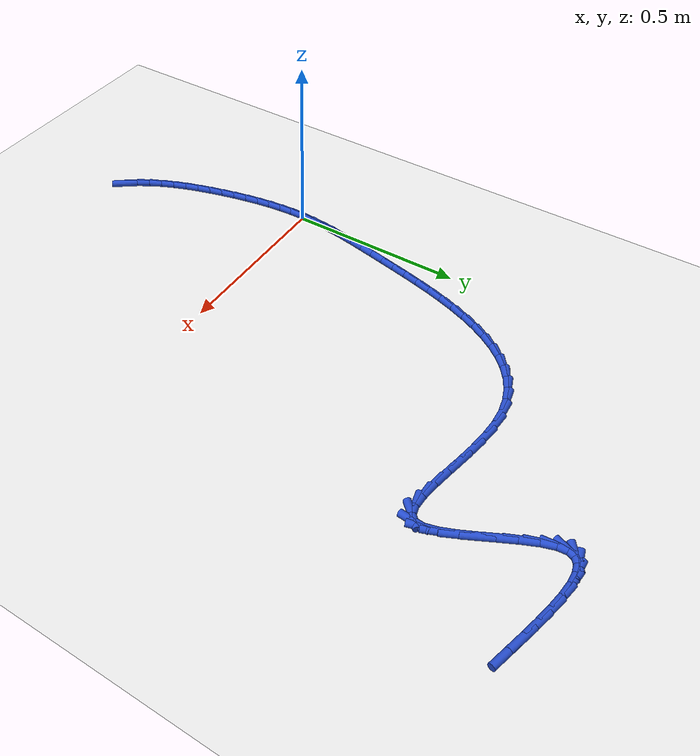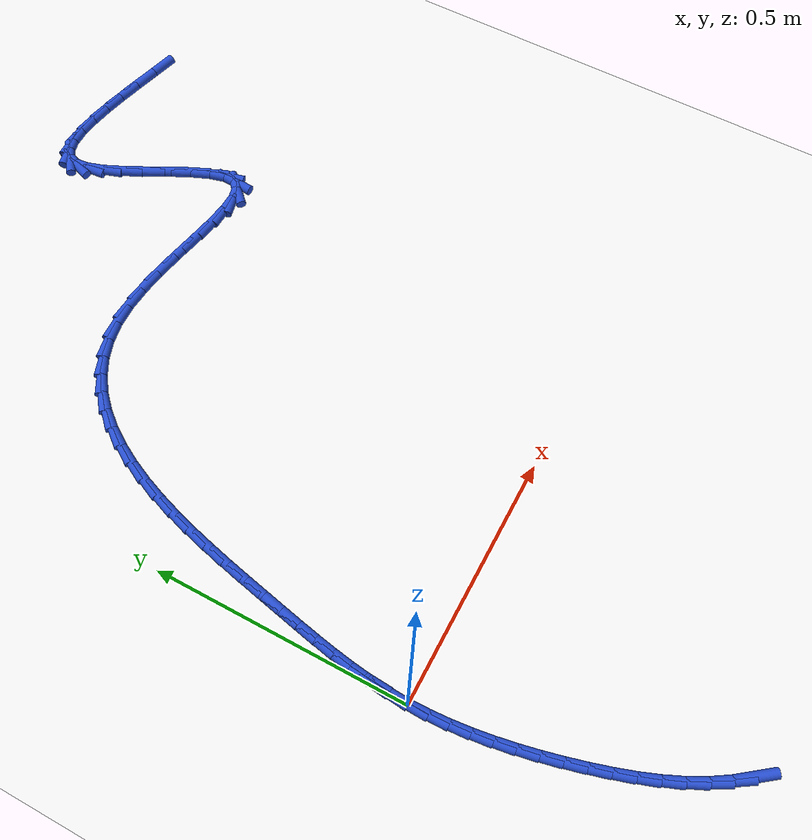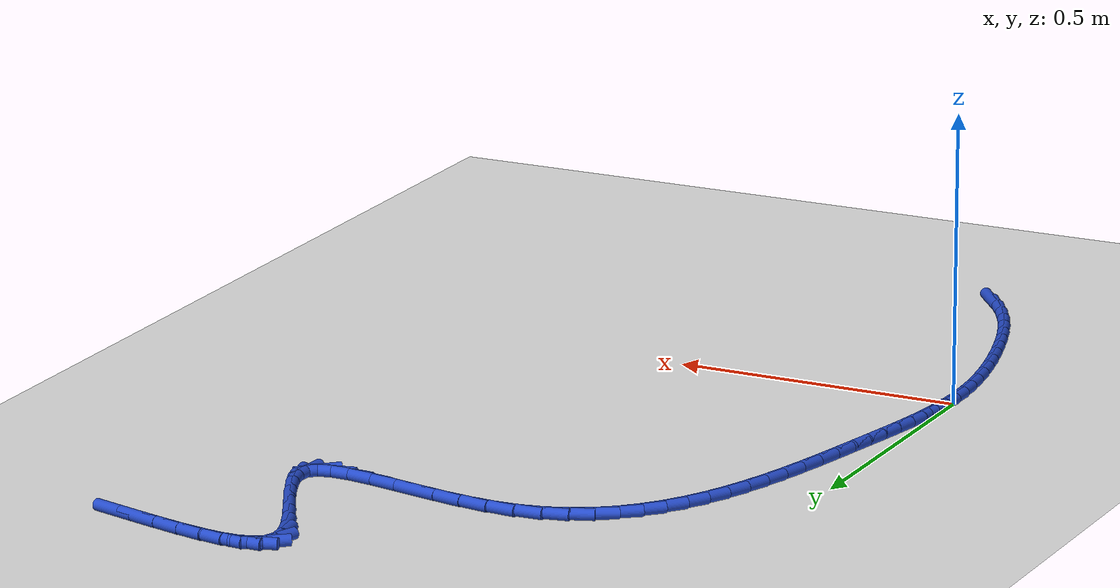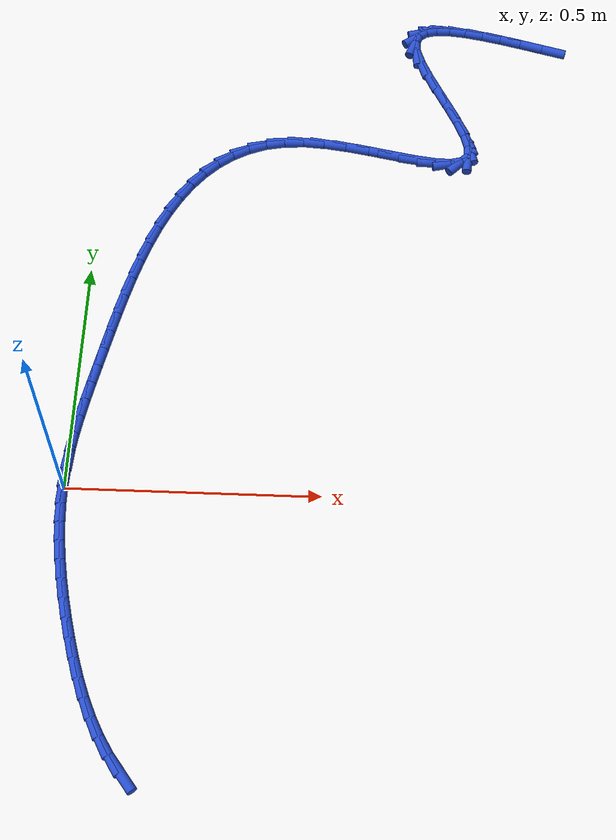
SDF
<sdf version="1.6">
 <world name="default">
  <model name="ground_plane">
   <static>1</static>
   <link name="link">
    <collision name="collision">
     <geometry><plane><normal>0 0 1</normal><size>100 100</size></plane></geometry>
     <surface><friction><ode><mu>100</mu><mu2>50</mu2></ode></friction></surface>
    </collision>
    <visual name="visual">
     <cast_shadows>0</cast_shadows>
     <geometry><plane><normal>0 0 1</normal><size>100 100</size></plane></geometry>
     <material>
      <script><uri>file://media/materials/scripts/gazebo.material</uri><name>Gazebo/WhiteGlow</name></script>
     </material>
    </visual>
   </link>
  </model>
  <model name="line">
   <link name="link_0">
    <pose>-1.0408340855860843e-17 0.0 0.01 0 1.57 1.5338810150821318</pose>
    <collision name="collision">
     <geometry><cylinder><radius>0.01</radius><length>0.08</length></cylinder></geometry>
    </collision>
    <visual name="visual">
     <material>
      <script><name>Gazebo/Blue</name><uri>file://media/materials/scripts/gazebo.material</uri></script>
     </material>
     <geometry><cylinder><radius>0.01</radius><length>0.08</length></cylinder></geometry>
    </visual>
   </link>
   <link name="link_1">
    <pose>0.0013844145351475103 0.037485410470784825 0.01 0 1.57 1.486864023934365</pose>
    <collision name="collision">
     <geometry><cylinder><radius>0.01</radius><length>0.08</length></cylinder></geometry>
    </collision>
    <visual name="visual">
     <material>
      <script><name>Gazebo/Blue</name><uri>file://media/materials/scripts/gazebo.material</uri></script>
     </material>
     <geometry><cylinder><radius>0.01</radius><length>0.08</length></cylinder></geometry>
    </visual>
   </link>
   <link name="link_2">
    <pose>0.004524886502201455 0.07481423269260003 0.01 0 1.57 1.4466615731809624</pose>
    <collision name="collision">
     <geometry><cylinder><radius>0.01</radius><length>0.08</length></cylinder></geometry>
    </collision>
    <visual name="visual">
     <material>
      <script><name>Gazebo/Blue</name><uri>file://media/materials/scripts/gazebo.material</uri></script>
     </material>
     <geometry><cylinder><radius>0.01</radius><length>0.08</length></cylinder></geometry>
    </visual>
   </link>
   <link name="link_3">
    <pose>0.009192861250005192 0.11222497376732163 0.01 0 1.57 1.4139521590009771</pose>
    <collision name="collision">
     <geometry><cylinder><radius>0.01</radius><length>0.08</length></cylinder></geometry>
    </collision>
    <visual name="visual">
     <material>
      <script><name>Gazebo/Blue</name><uri>file://media/materials/scripts/gazebo.material</uri></script>
     </material>
     <geometry><cylinder><radius>0.01</radius><length>0.08</length></cylinder></geometry>
    </visual>
   </link>
   <link name="link_4">
    <pose>0.015159784127402091 0.1499561407968256 0.01 0 1.57 1.389035305526209</pose>
    <collision name="collision">
     <geometry><cylinder><radius>0.01</radius><length>0.08</length></cylinder></geometry>
    </collision>
    <visual name="visual">
     <material>
      <script><name>Gazebo/Blue</name><uri>file://media/materials/scripts/gazebo.material</uri></script>
     </material>
     <geometry><cylinder><radius>0.01</radius><length>0.08</length></cylinder></geometry>
    </visual>
   </link>
   <link name="link_5">
    <pose>0.02219710048323552 0.18824624088298803 0.01 0 1.57 1.3718847321204972</pose>
    <collision name="collision">
     <geometry><cylinder><radius>0.01</radius><length>0.08</length></cylinder></geometry>
    </collision>
    <visual name="visual">
     <material>
      <script><name>Gazebo/Blue</name><uri>file://media/materials/scripts/gazebo.material</uri></script>
     </material>
     <geometry><cylinder><radius>0.01</radius><length>0.08</length></cylinder></geometry>
    </visual>
   </link>
   <link name="link_6">
    <pose>0.030076255666348844 0.22733378112768488 0.01 0 1.57 1.3622171164108423</pose>
    <collision name="collision">
     <geometry><cylinder><radius>0.01</radius><length>0.08</length></cylinder></geometry>
    </collision>
    <visual name="visual">
     <material>
      <script><name>Gazebo/Blue</name><uri>file://media/materials/scripts/gazebo.material</uri></script>
     </material>
     <geometry><cylinder><radius>0.01</radius><length>0.08</length></cylinder></geometry>
    </visual>
   </link>
   <link name="link_7">
    <pose>0.03856869502558545 0.2674572686327923 0.01 0 1.57 1.3594716124734094</pose>
    <collision name="collision">
     <geometry><cylinder><radius>0.01</radius><length>0.08</length></cylinder></geometry>
    </collision>
    <visual name="visual">
     <material>
      <script><name>Gazebo/Blue</name><uri>file://media/materials/scripts/gazebo.material</uri></script>
     </material>
     <geometry><cylinder><radius>0.01</radius><length>0.08</length></cylinder></geometry>
    </visual>
   </link>
   <link name="link_8">
    <pose>0.047448762833857676 0.308850834509866 0.01 0 1.57 1.3580396451433137</pose>
    <collision name="collision">
     <geometry><cylinder><radius>0.01</radius><length>0.08</length></cylinder></geometry>
    </collision>
    <visual name="visual">
     <material>
      <script><name>Gazebo/Blue</name><uri>file://media/materials/scripts/gazebo.material</uri></script>
     </material>
     <geometry><cylinder><radius>0.01</radius><length>0.08</length></cylinder></geometry>
    </visual>
   </link>
   <link name="link_9">
    <pose>0.05666047204780515 0.3514924912209465 0.01 0 1.57 1.3502225064797304</pose>
    <collision name="collision">
     <geometry><cylinder><radius>0.01</radius><length>0.08</length></cylinder></geometry>
    </collision>
    <visual name="visual">
     <material>
      <script><name>Gazebo/Blue</name><uri>file://media/materials/scripts/gazebo.material</uri></script>
     </material>
     <geometry><cylinder><radius>0.01</radius><length>0.08</length></cylinder></geometry>
    </visual>
   </link>
   <link name="link_10">
    <pose>0.0664083976022205 0.3949669271302282 0.01 0 1.57 1.3355788204203622</pose>
    <collision name="collision">
     <geometry><cylinder><radius>0.01</radius><length>0.08</length></cylinder></geometry>
    </collision>
    <visual name="visual">
     <material>
      <script><name>Gazebo/Blue</name><uri>file://media/materials/scripts/gazebo.material</uri></script>
     </material>
     <geometry><cylinder><radius>0.01</radius><length>0.08</length></cylinder></geometry>
    </visual>
   </link>
   <link name="link_11">
    <pose>0.07691924737476162 0.43882542043267536 0.01 0 1.57 1.3139896943194462</pose>
    <collision name="collision">
     <geometry><cylinder><radius>0.01</radius><length>0.08</length></cylinder></geometry>
    </collision>
    <visual name="visual">
     <material>
      <script><name>Gazebo/Blue</name><uri>file://media/materials/scripts/gazebo.material</uri></script>
     </material>
     <geometry><cylinder><radius>0.01</radius><length>0.08</length></cylinder></geometry>
    </visual>
   </link>
   <link name="link_12">
    <pose>0.08841972924308625 0.4826192493232517 0.01 0 1.57 1.2850154068901016</pose>
    <collision name="collision">
     <geometry><cylinder><radius>0.01</radius><length>0.08</length></cylinder></geometry>
    </collision>
    <visual name="visual">
     <material>
      <script><name>Gazebo/Blue</name><uri>file://media/materials/scripts/gazebo.material</uri></script>
     </material>
     <geometry><cylinder><radius>0.01</radius><length>0.08</length></cylinder></geometry>
    </visual>
   </link>
   <link name="link_13">
    <pose>0.10113655108485224 0.5258996919969214 0.01 0 1.57 1.2479029137293958</pose>
    <collision name="collision">
     <geometry><cylinder><radius>0.01</radius><length>0.08</length></cylinder></geometry>
    </collision>
    <visual name="visual">
     <material>
      <script><name>Gazebo/Blue</name><uri>file://media/materials/scripts/gazebo.material</uri></script>
     </material>
     <geometry><cylinder><radius>0.01</radius><length>0.08</length></cylinder></geometry>
    </visual>
   </link>
   <link name="link_14">
    <pose>0.11529642077771743 0.5682180266486485 0.01 0 1.57 1.2015804053674322</pose>
    <collision name="collision">
     <geometry><cylinder><radius>0.01</radius><length>0.08</length></cylinder></geometry>
    </collision>
    <visual name="visual">
     <material>
      <script><name>Gazebo/Blue</name><uri>file://media/materials/scripts/gazebo.material</uri></script>
     </material>
     <geometry><cylinder><radius>0.01</radius><length>0.08</length></cylinder></geometry>
    </visual>
   </link>
   <link name="link_15">
    <pose>0.13112604619933962 0.6091255314733968 0.01 0 1.57 1.1446566900153725</pose>
    <collision name="collision">
     <geometry><cylinder><radius>0.01</radius><length>0.08</length></cylinder></geometry>
    </collision>
    <visual name="visual">
     <material>
      <script><name>Gazebo/Blue</name><uri>file://media/materials/scripts/gazebo.material</uri></script>
     </material>
     <geometry><cylinder><radius>0.01</radius><length>0.08</length></cylinder></geometry>
    </visual>
   </link>
   <link name="link_16">
    <pose>0.1488521352273766 0.6481734846661307 0.01 0 1.57 1.0754558614681373</pose>
    <collision name="collision">
     <geometry><cylinder><radius>0.01</radius><length>0.08</length></cylinder></geometry>
    </collision>
    <visual name="visual">
     <material>
      <script><name>Gazebo/Blue</name><uri>file://media/materials/scripts/gazebo.material</uri></script>
     </material>
     <geometry><cylinder><radius>0.01</radius><length>0.08</length></cylinder></geometry>
    </visual>
   </link>
   <link name="link_17">
    <pose>0.16870139573948623 0.684913164421814 0.01 0 1.57 0.992140794243162</pose>
    <collision name="collision">
     <geometry><cylinder><radius>0.01</radius><length>0.08</length></cylinder></geometry>
    </collision>
    <visual name="visual">
     <material>
      <script><name>Gazebo/Blue</name><uri>file://media/materials/scripts/gazebo.material</uri></script>
     </material>
     <geometry><cylinder><radius>0.01</radius><length>0.08</length></cylinder></geometry>
    </visual>
   </link>
   <link name="link_18">
    <pose>0.19090053561332632 0.7188958489354109 0.01 0 1.57 0.8930087416871463</pose>
    <collision name="collision">
     <geometry><cylinder><radius>0.01</radius><length>0.08</length></cylinder></geometry>
    </collision>
    <visual name="visual">
     <material>
      <script><name>Gazebo/Blue</name><uri>file://media/materials/scripts/gazebo.material</uri></script>
     </material>
     <geometry><cylinder><radius>0.01</radius><length>0.08</length></cylinder></geometry>
    </visual>
   </link>
   <link name="link_19">
    <pose>0.21567626272655474 0.7496728164018852 0.01 0 1.57 0.7770531894006001</pose>
    <collision name="collision">
     <geometry><cylinder><radius>0.01</radius><length>0.08</length></cylinder></geometry>
    </collision>
    <visual name="visual">
     <material>
      <script><name>Gazebo/Blue</name><uri>file://media/materials/scripts/gazebo.material</uri></script>
     </material>
     <geometry><cylinder><radius>0.01</radius><length>0.08</length></cylinder></geometry>
    </visual>
   </link>
   <link name="link_20">
    <pose>0.24325528495682924 0.7767953450162011 0.01 0 1.57 0.6448086993344256</pose>
    <collision name="collision">
     <geometry><cylinder><radius>0.01</radius><length>0.08</length></cylinder></geometry>
    </collision>
    <visual name="visual">
     <material>
      <script><name>Gazebo/Blue</name><uri>file://media/materials/scripts/gazebo.material</uri></script>
     </material>
     <geometry><cylinder><radius>0.01</radius><length>0.08</length></cylinder></geometry>
    </visual>
   </link>
   <link name="link_21">
    <pose>0.27386431018180757 0.7998147129733225 0.01 0 1.57 0.499238976755451</pose>
    <collision name="collision">
     <geometry><cylinder><radius>0.01</radius><length>0.08</length></cylinder></geometry>
    </collision>
    <visual name="visual">
     <material>
      <script><name>Gazebo/Blue</name><uri>file://media/materials/scripts/gazebo.material</uri></script>
     </material>
     <geometry><cylinder><radius>0.01</radius><length>0.08</length></cylinder></geometry>
    </visual>
   </link>
   <link name="link_22">
    <pose>0.30773004627914785 0.8182821984682137 0.01 0 1.57 0.3460576391231455</pose>
    <collision name="collision">
     <geometry><cylinder><radius>0.01</radius><length>0.08</length></cylinder></geometry>
    </collision>
    <visual name="visual">
     <material>
      <script><name>Gazebo/Blue</name><uri>file://media/materials/scripts/gazebo.material</uri></script>
     </material>
     <geometry><cylinder><radius>0.01</radius><length>0.08</length></cylinder></geometry>
    </visual>
   </link>
   <link name="link_23">
    <pose>0.3450792011265077 0.8317490796958386 0.01 0 1.57 0.1928412448394072</pose>
    <collision name="collision">
     <geometry><cylinder><radius>0.01</radius><length>0.08</length></cylinder></geometry>
    </collision>
    <visual name="visual">
     <material>
      <script><name>Gazebo/Blue</name><uri>file://media/materials/scripts/gazebo.material</uri></script>
     </material>
     <geometry><cylinder><radius>0.01</radius><length>0.08</length></cylinder></geometry>
    </visual>
   </link>
   <link name="link_24">
    <pose>0.3861384826015446 0.8397666348511607 0.01 0 1.57 0.04743158602679558</pose>
    <collision name="collision">
     <geometry><cylinder><radius>0.01</radius><length>0.08</length></cylinder></geometry>
    </collision>
    <visual name="visual">
     <material>
      <script><name>Gazebo/Blue</name><uri>file://media/materials/scripts/gazebo.material</uri></script>
     </material>
     <geometry><cylinder><radius>0.01</radius><length>0.08</length></cylinder></geometry>
    </visual>
   </link>
   <link name="link_25">
    <pose>0.43112037120265406 0.8419017986088949 0.01 0 1.57 -0.06922000271354344</pose>
    <collision name="collision">
     <geometry><cylinder><radius>0.01</radius><length>0.08</length></cylinder></geometry>
    </collision>
    <visual name="visual">
     <material>
      <script><name>Gazebo/Blue</name><uri>file://media/materials/scripts/gazebo.material</uri></script>
     </material>
     <geometry><cylinder><radius>0.01</radius><length>0.08</length></cylinder></geometry>
    </visual>
   </link>
   <link name="link_26">
    <pose>0.47948575894070256 0.8385485890944435 0.01 0 1.57 -0.14324961648170986</pose>
    <collision name="collision">
     <geometry><cylinder><radius>0.01</radius><length>0.08</length></cylinder></geometry>
    </collision>
    <visual name="visual">
     <material>
      <script><name>Gazebo/Blue</name><uri>file://media/materials/scripts/gazebo.material</uri></script>
     </material>
     <geometry><cylinder><radius>0.01</radius><length>0.08</length></cylinder></geometry>
    </visual>
   </link>
   <link name="link_27">
    <pose>0.5295857494767011 0.8313222879213649 0.01 0 1.57 -0.18520853323677097</pose>
    <collision name="collision">
     <geometry><cylinder><radius>0.01</radius><length>0.08</length></cylinder></geometry>
    </collision>
    <visual name="visual">
     <material>
      <script><name>Gazebo/Blue</name><uri>file://media/materials/scripts/gazebo.material</uri></script>
     </material>
     <geometry><cylinder><radius>0.01</radius><length>0.08</length></cylinder></geometry>
    </visual>
   </link>
   <link name="link_28">
    <pose>0.5796821503316062 0.8219364423909886 0.01 0 1.57 -0.20059339653348188</pose>
    <collision name="collision">
     <geometry><cylinder><radius>0.01</radius><length>0.08</length></cylinder></geometry>
    </collision>
    <visual name="visual">
     <material>
      <script><name>Gazebo/Blue</name><uri>file://media/materials/scripts/gazebo.material</uri></script>
     </material>
     <geometry><cylinder><radius>0.01</radius><length>0.08</length></cylinder></geometry>
    </visual>
   </link>
   <link name="link_29">
    <pose>0.6280367690263744 0.8121045998046457 0.01 0 1.57 -0.18858148281199633</pose>
    <collision name="collision">
     <geometry><cylinder><radius>0.01</radius><length>0.08</length></cylinder></geometry>
    </collision>
    <visual name="visual">
     <material>
      <script><name>Gazebo/Blue</name><uri>file://media/materials/scripts/gazebo.material</uri></script>
     </material>
     <geometry><cylinder><radius>0.01</radius><length>0.08</length></cylinder></geometry>
    </visual>
   </link>
   <link name="link_30">
    <pose>0.6729114130819626 0.8035403074636661 0.01 0 1.57 -0.13986966720312527</pose>
    <collision name="collision">
     <geometry><cylinder><radius>0.01</radius><length>0.08</length></cylinder></geometry>
    </collision>
    <visual name="visual">
     <material>
      <script><name>Gazebo/Blue</name><uri>file://media/materials/scripts/gazebo.material</uri></script>
     </material>
     <geometry><cylinder><radius>0.01</radius><length>0.08</length></cylinder></geometry>
    </visual>
   </link>
   <link name="link_31">
    <pose>0.7125678900193272 0.7979571126693802 0.01 0 1.57 -0.02716599899316748</pose>
    <collision name="collision">
     <geometry><cylinder><radius>0.01</radius><length>0.08</length></cylinder></geometry>
    </collision>
    <visual name="visual">
     <material>
      <script><name>Gazebo/Blue</name><uri>file://media/materials/scripts/gazebo.material</uri></script>
     </material>
     <geometry><cylinder><radius>0.01</radius><length>0.08</length></cylinder></geometry>
    </visual>
   </link>
   <link name="link_32">
    <pose>0.7452680073594252 0.7970685627231182 0.01 0 1.57 0.2260035886981403</pose>
    <collision name="collision">
     <geometry><cylinder><radius>0.01</radius><length>0.08</length></cylinder></geometry>
    </collision>
    <visual name="visual">
     <material>
      <script><name>Gazebo/Blue</name><uri>file://media/materials/scripts/gazebo.material</uri></script>
     </material>
     <geometry><cylinder><radius>0.01</radius><length>0.08</length></cylinder></geometry>
    </visual>
   </link>
   <link name="link_33">
    <pose>0.7692735726232129 0.8025882049262107 0.01 0 1.57 0.7879174656125562</pose>
    <collision name="collision">
     <geometry><cylinder><radius>0.01</radius><length>0.08</length></cylinder></geometry>
    </collision>
    <visual name="visual">
     <material>
      <script><name>Gazebo/Blue</name><uri>file://media/materials/scripts/gazebo.material</uri></script>
     </material>
     <geometry><cylinder><radius>0.01</radius><length>0.08</length></cylinder></geometry>
    </visual>
   </link>
   <link name="link_34">
    <pose>0.7828463933316472 0.816229586579988 0.01 0 1.57 1.4905816882147926</pose>
    <collision name="collision">
     <geometry><cylinder><radius>0.01</radius><length>0.08</length></cylinder></geometry>
    </collision>
    <visual name="visual">
     <material>
      <script><name>Gazebo/Blue</name><uri>file://media/materials/scripts/gazebo.material</uri></script>
     </material>
     <geometry><cylinder><radius>0.01</radius><length>0.08</length></cylinder></geometry>
    </visual>
   </link>
   <link name="link_35">
    <pose>0.7847014870375278 0.8393065864038246 0.01 0 1.57 -1.312764777888609</pose>
    <collision name="collision">
     <geometry><cylinder><radius>0.01</radius><length>0.08</length></cylinder></geometry>
    </collision>
    <visual name="visual">
     <material>
      <script><name>Gazebo/Blue</name><uri>file://media/materials/scripts/gazebo.material</uri></script>
     </material>
     <geometry><cylinder><radius>0.01</radius><length>0.08</length></cylinder></geometry>
    </visual>
   </link>
   <link name="link_36">
    <pose>0.7764476613049041 0.8705811604564926 0.01 0 1.57 -1.1736444867047655</pose>
    <collision name="collision">
     <geometry><cylinder><radius>0.01</radius><length>0.08</length></cylinder></geometry>
    </collision>
    <visual name="visual">
     <material>
      <script><name>Gazebo/Blue</name><uri>file://media/materials/scripts/gazebo.material</uri></script>
     </material>
     <geometry><cylinder><radius>0.01</radius><length>0.08</length></cylinder></geometry>
    </visual>
   </link>
   <link name="link_37">
    <pose>0.7608316582090342 0.9078117639020391 0.01 0 1.57 -1.111900751533667</pose>
    <collision name="collision">
     <geometry><cylinder><radius>0.01</radius><length>0.08</length></cylinder></geometry>
    </collision>
    <visual name="visual">
     <material>
      <script><name>Gazebo/Blue</name><uri>file://media/materials/scripts/gazebo.material</uri></script>
     </material>
     <geometry><cylinder><radius>0.01</radius><length>0.08</length></cylinder></geometry>
    </visual>
   </link>
   <link name="link_38">
    <pose>0.7406029404583624 0.9487544526822275 0.01 0 1.57 -1.0905657357608847</pose>
    <collision name="collision">
     <geometry><cylinder><radius>0.01</radius><length>0.08</length></cylinder></geometry>
    </collision>
    <visual name="visual">
     <material>
      <script><name>Gazebo/Blue</name><uri>file://media/materials/scripts/gazebo.material</uri></script>
     </material>
     <geometry><cylinder><radius>0.01</radius><length>0.08</length></cylinder></geometry>
    </visual>
   </link>
   <link name="link_39">
    <pose>0.7185109707613317 0.9911652827388207 0.01 0 1.57 -1.0997166024331724</pose>
    <collision name="collision">
     <geometry><cylinder><radius>0.01</radius><length>0.08</length></cylinder></geometry>
    </collision>
    <visual name="visual">
     <material>
      <script><name>Gazebo/Blue</name><uri>file://media/materials/scripts/gazebo.material</uri></script>
     </material>
     <geometry><cylinder><radius>0.01</radius><length>0.08</length></cylinder></geometry>
    </visual>
   </link>
   <link name="link_40">
    <pose>0.6973052118263865 1.0328003100135836 0.01 0 1.57 -1.1437893352278174</pose>
    <collision name="collision">
     <geometry><cylinder><radius>0.01</radius><length>0.08</length></cylinder></geometry>
    </collision>
    <visual name="visual">
     <material>
      <script><name>Gazebo/Blue</name><uri>file://media/materials/scripts/gazebo.material</uri></script>
     </material>
     <geometry><cylinder><radius>0.01</radius><length>0.08</length></cylinder></geometry>
    </visual>
   </link>
   <link name="link_41">
    <pose>0.6797351263619702 1.0714155904482792 0.01 0 1.57 -1.2472185644766596</pose>
    <collision name="collision">
     <geometry><cylinder><radius>0.01</radius><length>0.08</length></cylinder></geometry>
    </collision>
    <visual name="visual">
     <material>
      <script><name>Gazebo/Blue</name><uri>file://media/materials/scripts/gazebo.material</uri></script>
     </material>
     <geometry><cylinder><radius>0.01</radius><length>0.08</length></cylinder></geometry>
    </visual>
   </link>
   <link name="link_42">
    <pose>0.6685501770765268 1.104767179984671 0.01 0 1.57 -1.4837549612714973</pose>
    <collision name="collision">
     <geometry><cylinder><radius>0.01</radius><length>0.08</length></cylinder></geometry>
    </collision>
    <visual name="visual">
     <material>
      <script><name>Gazebo/Blue</name><uri>file://media/materials/scripts/gazebo.material</uri></script>
     </material>
     <geometry><cylinder><radius>0.01</radius><length>0.08</length></cylinder></geometry>
    </visual>
   </link>
   <link name="link_43">
    <pose>0.6662787332912858 1.1307973849179023 0.01 0 1.57 1.2076303518280236</pose>
    <collision name="collision">
     <geometry><cylinder><radius>0.01</radius><length>0.08</length></cylinder></geometry>
    </collision>
    <visual name="visual">
     <material>
      <script><name>Gazebo/Blue</name><uri>file://media/materials/scripts/gazebo.material</uri></script>
     </material>
     <geometry><cylinder><radius>0.01</radius><length>0.08</length></cylinder></geometry>
    </visual>
   </link>
   <link name="link_44">
    <pose>0.673295864148692 1.1492624641189149 0.01 0 1.57 0.6467468062849852</pose>
    <collision name="collision">
     <geometry><cylinder><radius>0.01</radius><length>0.08</length></cylinder></geometry>
    </collision>
    <visual name="visual">
     <material>
      <script><name>Gazebo/Blue</name><uri>file://media/materials/scripts/gazebo.material</uri></script>
     </material>
     <geometry><cylinder><radius>0.01</radius><length>0.08</length></cylinder></geometry>
    </visual>
   </link>
   <link name="link_45">
    <pose>0.6887627527752381 1.1609412610880783 0.01 0 1.57 0.24158050422135313</pose>
    <collision name="collision">
     <geometry><cylinder><radius>0.01</radius><length>0.08</length></cylinder></geometry>
    </collision>
    <visual name="visual">
     <material>
      <script><name>Gazebo/Blue</name><uri>file://media/materials/scripts/gazebo.material</uri></script>
     </material>
     <geometry><cylinder><radius>0.01</radius><length>0.08</length></cylinder></geometry>
    </visual>
   </link>
   <link name="link_46">
    <pose>0.7118269470503021 1.1666241057371163 0.01 0 1.57 0.016007940934466457</pose>
    <collision name="collision">
     <geometry><cylinder><radius>0.01</radius><length>0.08</length></cylinder></geometry>
    </collision>
    <visual name="visual">
     <material>
      <script><name>Gazebo/Blue</name><uri>file://media/materials/scripts/gazebo.material</uri></script>
     </material>
     <geometry><cylinder><radius>0.01</radius><length>0.08</length></cylinder></geometry>
    </visual>
   </link>
   <link name="link_47">
    <pose>0.7416359948532618 1.167101327977752 0.01 0 1.57 -0.10986147646847871</pose>
    <collision name="collision">
     <geometry><cylinder><radius>0.01</radius><length>0.08</length></cylinder></geometry>
    </collision>
    <visual name="visual">
     <material>
      <script><name>Gazebo/Blue</name><uri>file://media/materials/scripts/gazebo.material</uri></script>
     </material>
     <geometry><cylinder><radius>0.01</radius><length>0.08</length></cylinder></geometry>
    </visual>
   </link>
   <link name="link_48">
    <pose>0.7773374440634957 1.163163257721709 0.01 0 1.57 -0.18354576177938658</pose>
    <collision name="collision">
     <geometry><cylinder><radius>0.01</radius><length>0.08</length></cylinder></geometry>
    </collision>
    <visual name="visual">
     <material>
      <script><name>Gazebo/Blue</name><uri>file://media/materials/scripts/gazebo.material</uri></script>
     </material>
     <geometry><cylinder><radius>0.01</radius><length>0.08</length></cylinder></geometry>
    </visual>
   </link>
   <link name="link_49">
    <pose>0.8180788425603821 1.155600224880712 0.01 0 1.57 -0.22742128290877697</pose>
    <collision name="collision">
     <geometry><cylinder><radius>0.01</radius><length>0.08</length></cylinder></geometry>
    </collision>
    <visual name="visual">
     <material>
      <script><name>Gazebo/Blue</name><uri>file://media/materials/scripts/gazebo.material</uri></script>
     </material>
     <geometry><cylinder><radius>0.01</radius><length>0.08</length></cylinder></geometry>
    </visual>
   </link>
   <link name="link_50">
    <pose>0.8630077382232985 1.145202559366484 0.01 0 1.57 -0.2522970190864793</pose>
    <collision name="collision">
     <geometry><cylinder><radius>0.01</radius><length>0.08</length></cylinder></geometry>
    </collision>
    <visual name="visual">
     <material>
      <script><name>Gazebo/Blue</name><uri>file://media/materials/scripts/gazebo.material</uri></script>
     </material>
     <geometry><cylinder><radius>0.01</radius><length>0.08</length></cylinder></geometry>
    </visual>
   </link>
   <link name="link_51">
    <pose>0.9112716789316234 1.1327605910907488 0.01 0 1.57 -0.26360855567686203</pose>
    <collision name="collision">
     <geometry><cylinder><radius>0.01</radius><length>0.08</length></cylinder></geometry>
    </collision>
    <visual name="visual">
     <material>
      <script><name>Gazebo/Blue</name><uri>file://media/materials/scripts/gazebo.material</uri></script>
     </material>
     <geometry><cylinder><radius>0.01</radius><length>0.08</length></cylinder></geometry>
    </visual>
   </link>
   <link name="link_52">
    <pose>0.962018212564735 1.1190646499652301 0.01 0 1.57 -0.26403002023799016</pose>
    <collision name="collision">
     <geometry><cylinder><radius>0.01</radius><length>0.08</length></cylinder></geometry>
    </collision>
    <visual name="visual">
     <material>
      <script><name>Gazebo/Blue</name><uri>file://media/materials/scripts/gazebo.material</uri></script>
     </material>
     <geometry><cylinder><radius>0.01</radius><length>0.08</length></cylinder></geometry>
    </visual>
   </link>
   <link name="link_195">
    <pose>0.16548214282638812 -0.5538801457730083 0.01 0 1.57 -0.9149070073317634</pose>
    <collision name="collision">
     <geometry><cylinder><radius>0.01</radius><length>0.08</length></cylinder></geometry>
    </collision>
    <visual name="visual">
     <material>
      <script><name>Gazebo/Blue</name><uri>file://media/materials/scripts/gazebo.material</uri></script>
     </material>
     <geometry><cylinder><radius>0.01</radius><length>0.08</length></cylinder></geometry>
    </visual>
   </link>
   <link name="link_196">
    <pose>0.14204560661946827 -0.5234248568802925 0.01 0 1.57 -1.003091259931415</pose>
    <collision name="collision">
     <geometry><cylinder><radius>0.01</radius><length>0.08</length></cylinder></geometry>
    </collision>
    <visual name="visual">
     <material>
      <script><name>Gazebo/Blue</name><uri>file://media/materials/scripts/gazebo.material</uri></script>
     </material>
     <geometry><cylinder><radius>0.01</radius><length>0.08</length></cylinder></geometry>
    </visual>
   </link>
   <link name="link_197">
    <pose>0.12129904115972354 -0.4908932432010389 0.01 0 1.57 -1.079869448055332</pose>
    <collision name="collision">
     <geometry><cylinder><radius>0.01</radius><length>0.08</length></cylinder></geometry>
    </collision>
    <visual name="visual">
     <material>
      <script><name>Gazebo/Blue</name><uri>file://media/materials/scripts/gazebo.material</uri></script>
     </material>
     <geometry><cylinder><radius>0.01</radius><length>0.08</length></cylinder></geometry>
    </visual>
   </link>
   <link name="link_198">
    <pose>0.10296104975912516 -0.45658964987177403 0.01 0 1.57 -1.1453008507867803</pose>
    <collision name="collision">
     <geometry><cylinder><radius>0.01</radius><length>0.08</length></cylinder></geometry>
    </collision>
    <visual name="visual">
     <material>
      <script><name>Gazebo/Blue</name><uri>file://media/materials/scripts/gazebo.material</uri></script>
     </material>
     <geometry><cylinder><radius>0.01</radius><length>0.08</length></cylinder></geometry>
    </visual>
   </link>
   <link name="link_199">
    <pose>0.08675023572964487 -0.4208184220290253 0.01 0 1.57 -1.1998671746621121</pose>
    <collision name="collision">
     <geometry><cylinder><radius>0.01</radius><length>0.08</length></cylinder></geometry>
    </collision>
    <visual name="visual">
     <material>
      <script><name>Gazebo/Blue</name><uri>file://media/materials/scripts/gazebo.material</uri></script>
     </material>
     <geometry><cylinder><radius>0.01</radius><length>0.08</length></cylinder></geometry>
    </visual>
   </link>
   <link name="link_200">
    <pose>0.07238520238325444 -0.3838839048093199 0.01 0 1.57 -1.244223479703674</pose>
    <collision name="collision">
     <geometry><cylinder><radius>0.01</radius><length>0.08</length></cylinder></geometry>
    </collision>
    <visual name="visual">
     <material>
      <script><name>Gazebo/Blue</name><uri>file://media/materials/scripts/gazebo.material</uri></script>
     </material>
     <geometry><cylinder><radius>0.01</radius><length>0.08</length></cylinder></geometry>
    </visual>
   </link>
   <link name="link_201">
    <pose>0.0595845530319256 -0.34609044334918504 0.01 0 1.57 -1.279022718670905</pose>
    <collision name="collision">
     <geometry><cylinder><radius>0.01</radius><length>0.08</length></cylinder></geometry>
    </collision>
    <visual name="visual">
     <material>
      <script><name>Gazebo/Blue</name><uri>file://media/materials/scripts/gazebo.material</uri></script>
     </material>
     <geometry><cylinder><radius>0.01</radius><length>0.08</length></cylinder></geometry>
    </visual>
   </link>
   <link name="link_202">
    <pose>0.04806689098762984 -0.30774238278514693 0.01 0 1.57 -1.3053726801272243</pose>
    <collision name="collision">
     <geometry><cylinder><radius>0.01</radius><length>0.08</length></cylinder></geometry>
    </collision>
    <visual name="visual">
     <material>
      <script><name>Gazebo/Blue</name><uri>file://media/materials/scripts/gazebo.material</uri></script>
     </material>
     <geometry><cylinder><radius>0.01</radius><length>0.08</length></cylinder></geometry>
    </visual>
   </link>
   <link name="link_203">
    <pose>0.0375713374873838 -0.2691327161191194 0.01 0 1.57 -1.330325500494913</pose>
    <collision name="collision">
     <geometry><cylinder><radius>0.01</radius><length>0.08</length></cylinder></geometry>
    </collision>
    <visual name="visual">
     <material>
      <script><name>Gazebo/Blue</name><uri>file://media/materials/scripts/gazebo.material</uri></script>
     </material>
     <geometry><cylinder><radius>0.01</radius><length>0.08</length></cylinder></geometry>
    </visual>
   </link>
   <link name="link_204">
    <pose>0.028078562809816084 -0.23042079236948762 0.01 0 1.57 -1.3584641786401253</pose>
    <collision name="collision">
     <geometry><cylinder><radius>0.01</radius><length>0.08</length></cylinder></geometry>
    </collision>
    <visual name="visual">
     <material>
      <script><name>Gazebo/Blue</name><uri>file://media/materials/scripts/gazebo.material</uri></script>
     </material>
     <geometry><cylinder><radius>0.01</radius><length>0.08</length></cylinder></geometry>
    </visual>
   </link>
   <link name="link_205">
    <pose>0.0197265253699004 -0.1916789363505176 0.01 0 1.57 -1.3900895905732087</pose>
    <collision name="collision">
     <geometry><cylinder><radius>0.01</radius><length>0.08</length></cylinder></geometry>
    </collision>
    <visual name="visual">
     <material>
      <script><name>Gazebo/Blue</name><uri>file://media/materials/scripts/gazebo.material</uri></script>
     </material>
     <geometry><cylinder><radius>0.01</radius><length>0.08</length></cylinder></geometry>
    </visual>
   </link>
   <link name="link_206">
    <pose>0.012655870975205255 -0.15297798599890677 0.01 0 1.57 -1.4254501744800194</pose>
    <collision name="collision">
     <geometry><cylinder><radius>0.01</radius><length>0.08</length></cylinder></geometry>
    </collision>
    <visual name="visual">
     <material>
      <script><name>Gazebo/Blue</name><uri>file://media/materials/scripts/gazebo.material</uri></script>
     </material>
     <geometry><cylinder><radius>0.01</radius><length>0.08</length></cylinder></geometry>
    </visual>
   </link>
   <link name="link_207">
    <pose>0.007007245433299132 -0.11438877925135223 0.01 0 1.57 -1.4648083723929024</pose>
    <collision name="collision">
     <geometry><cylinder><radius>0.01</radius><length>0.08</length></cylinder></geometry>
    </collision>
    <visual name="visual">
     <material>
      <script><name>Gazebo/Blue</name><uri>file://media/materials/scripts/gazebo.material</uri></script>
     </material>
     <geometry><cylinder><radius>0.01</radius><length>0.08</length></cylinder></geometry>
    </visual>
   </link>
   <link name="link_208">
    <pose>0.0029212945517505516 -0.07598215404455141 0.01 0 1.57 -1.5084282958277124</pose>
    <collision name="collision">
     <geometry><cylinder><radius>0.01</radius><length>0.08</length></cylinder></geometry>
    </collision>
    <visual name="visual">
     <material>
      <script><name>Gazebo/Blue</name><uri>file://media/materials/scripts/gazebo.material</uri></script>
     </material>
     <geometry><cylinder><radius>0.01</radius><length>0.08</length></cylinder></geometry>
    </visual>
   </link>
   <link name="link_209">
    <pose>0.0005386641381279703 -0.03782894831520067 0.01 0 1.57 -1.5565578200537105</pose>
    <collision name="collision">
     <geometry><cylinder><radius>0.01</radius><length>0.08</length></cylinder></geometry>
    </collision>
    <visual name="visual">
     <material>
      <script><name>Gazebo/Blue</name><uri>file://media/materials/scripts/gazebo.material</uri></script>
     </material>
     <geometry><cylinder><radius>0.01</radius><length>0.08</length></cylinder></geometry>
    </visual>
   </link>
   <link name="link_210">
    <pose>-6.938893903907228e-18 -9.020562075079397e-17 0.01 0 1.57 1.5321887739206883</pose>
    <collision name="collision">
     <geometry><cylinder><radius>0.01</radius><length>0.08</length></cylinder></geometry>
    </collision>
    <visual name="visual">
     <material>
      <script><name>Gazebo/Blue</name><uri>file://media/materials/scripts/gazebo.material</uri></script>
     </material>
     <geometry><cylinder><radius>0.01</radius><length>0.08</length></cylinder></geometry>
    </visual>
   </link>
   <link name="link_211">
    <pose>0.0014459479449350238 0.03743385296435571 0.01 0 1.57 1.4744923232719287</pose>
    <collision name="collision">
     <geometry><cylinder><radius>0.01</radius><length>0.08</length></cylinder></geometry>
    </collision>
    <visual name="visual">
     <material>
      <script><name>Gazebo/Blue</name><uri>file://media/materials/scripts/gazebo.material</uri></script>
     </material>
     <geometry><cylinder><radius>0.01</radius><length>0.08</length></cylinder></geometry>
    </visual>
   </link>
   <link name="link_212">
    <pose>0.005017153780501814 0.07440177264117029 0.01 0 1.57 1.5034650046630276</pose>
    <collision name="collision">
     <geometry><cylinder><radius>0.01</radius><length>0.08</length></cylinder></geometry>
    </collision>
    <visual name="visual">
     <material>
      <script><name>Gazebo/Blue</name><uri>file://media/materials/scripts/gazebo.material</uri></script>
     </material>
     <geometry><cylinder><radius>0.01</radius><length>0.08</length></cylinder></geometry>
    </visual>
   </link>
  </model>
 </world>
</sdf>
